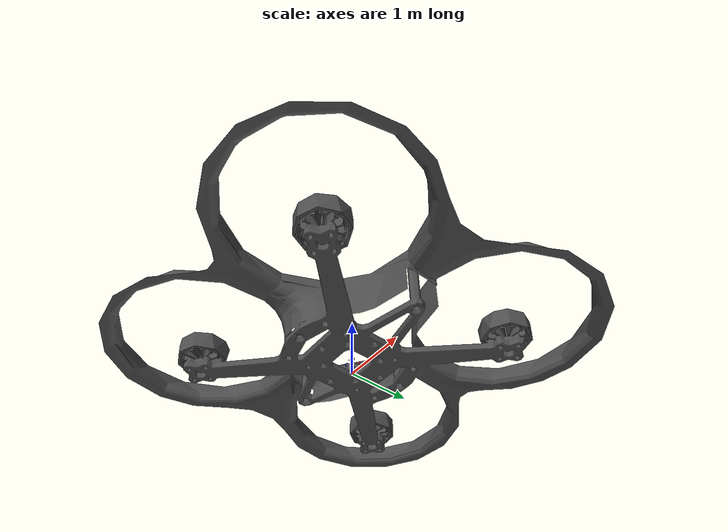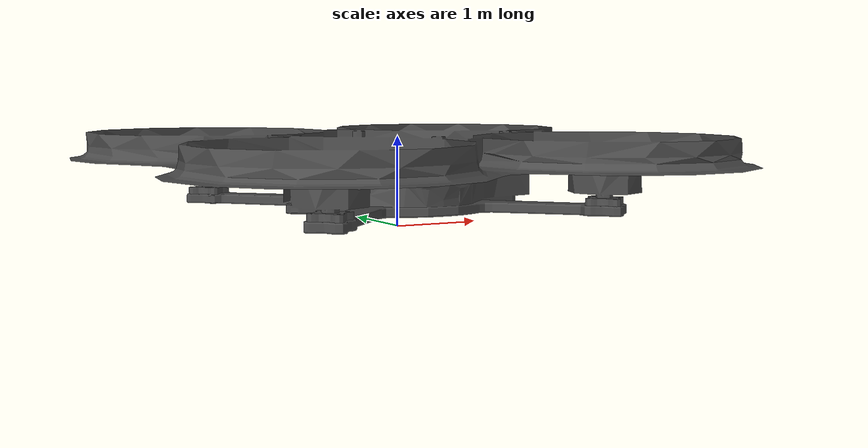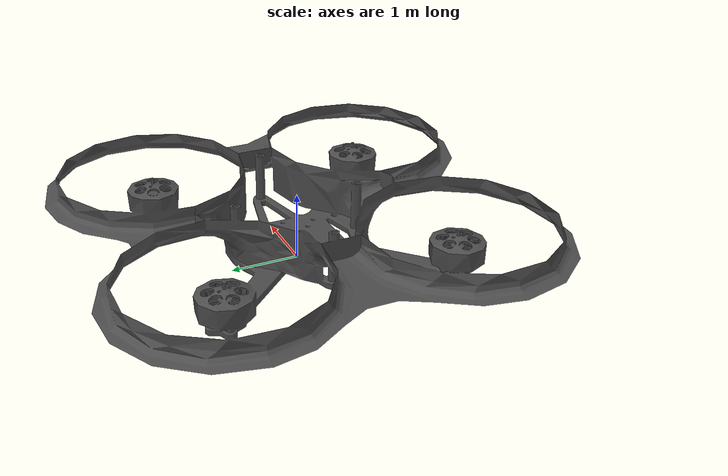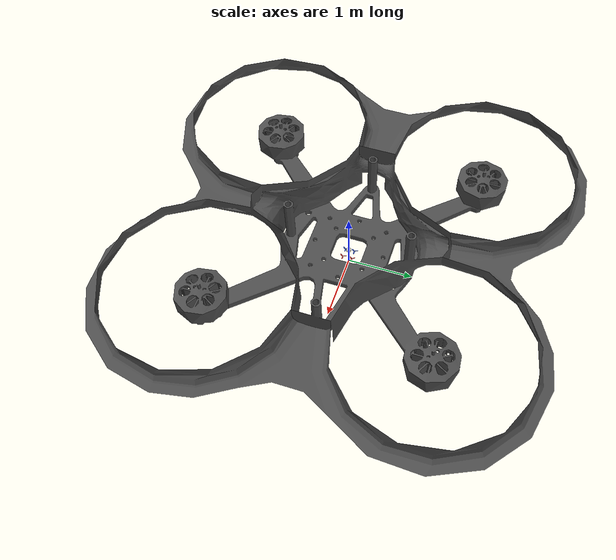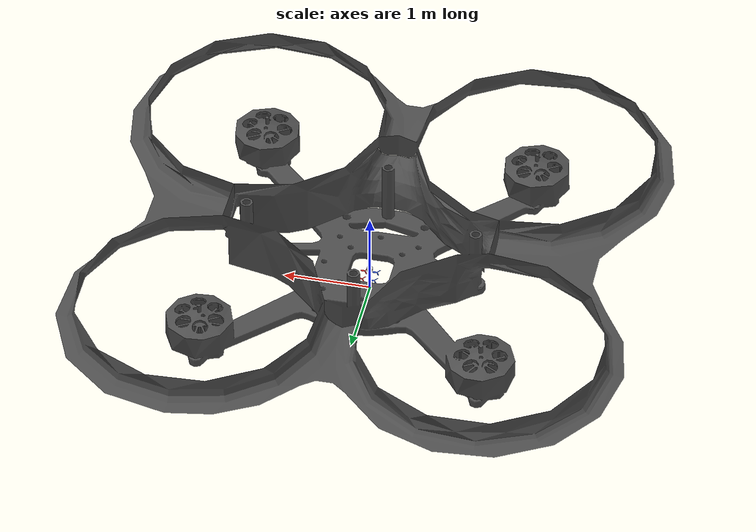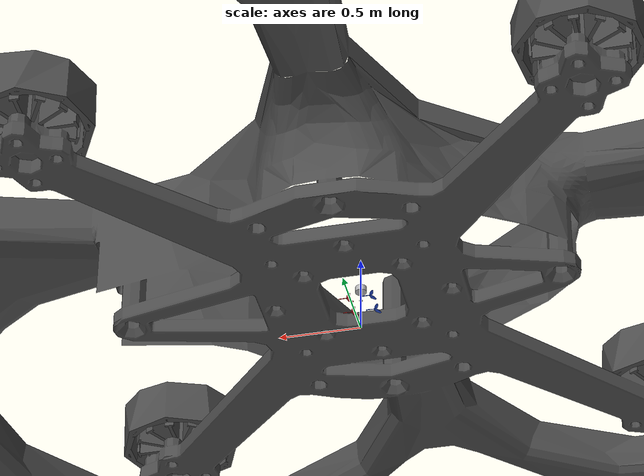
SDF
<?xml version="1.0"?>
<sdf version="1.6">
  <model name="sunray_with_2dlidar">
    <include>
      <uri>model://sunray</uri>
    </include>
    <include>
      <uri>model://2D_lidar</uri>
      <pose>0 0 0.28 0 0 0</pose>
    </include>
    <joint name="2Dlidar_joint" type="fixed">
      <child>2D_lidar::laser</child>
      <parent>sunray::base_link</parent>
      <axis>
        <xyz>0 0 1</xyz>
        <limit>
          <upper>0</upper>
          <lower>0</lower>
        </limit>
      </axis>
    </joint>
  </model>
</sdf>

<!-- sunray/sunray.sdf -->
<sdf version='1.6'>
  <model name='sunray'>
    <!-- sunray body -->
    <link name='base_link'>
      <pose>0 0 0 0 0 0</pose>
      <inertial>
        <pose>0 0 0.18 0 0 0</pose>
        <mass>1.0</mass>
        <inertia>
          <ixx>0.0065</ixx>
          <ixy>0</ixy>
          <ixz>0</ixz>
          <iyy>0.0065</iyy>
          <iyz>0</iyz>
          <izz>0.012</izz>
        </inertia>
      </inertial>
      <collision name='base_link_inertia_collision'>
        <pose>0 0 0.125 0 0 0</pose>
        <geometry>
          <box>
						<size>0.2 0.15 0.06</size>
          </box>
        </geometry>
        <surface>
          <contact>
            <ode>
              <min_depth>0.001</min_depth>
              <max_vel>0</max_vel>
            </ode>
          </contact>
          <friction>
            <ode/>
          </friction>
        </surface>
      </collision>
      <visual name='base_link_inertia_visual'>
        <pose>0 0 0.2 0 0 -1.57</pose>
        <geometry>
          <mesh>
            <scale>0.03 0.03 0.03</scale>
            <uri>model://sunray/meshes/sunray.stl</uri>
          </mesh>
        </geometry>
        <material>
          <script>
            <name>Gazebo/DarkGrey</name>
            <uri>file://media/materials/scripts/gazebo.material</uri>
          </script>
        </material>
      </visual>
      <gravity>1</gravity>
      <velocity_decay/>
      <self_collide>0</self_collide>
    </link>
    <link name='imu_link'>
      <pose>0 0 0 0 0 0</pose>
      <inertial>
        <pose>0 0 0.2 0 0 0</pose>
        <mass>0.015</mass>
        <inertia>
          <ixx>1e-05</ixx>
          <ixy>0</ixy>
          <ixz>0</ixz>
          <iyy>1e-05</iyy>
          <iyz>0</iyz>
          <izz>1e-05</izz>
        </inertia>
      </inertial>
    </link>
    <joint name='imu_joint' type='revolute'>
      <child>imu_link</child>
      <parent>base_link</parent>
      <axis>
        <xyz>1 0 0</xyz>
        <limit>
          <lower>0</lower>
          <upper>0</upper>
          <effort>0</effort>
          <velocity>0</velocity>
        </limit>
        <dynamics>
          <spring_reference>0</spring_reference>
          <spring_stiffness>0</spring_stiffness>
        </dynamics>
        <use_parent_model_frame>1</use_parent_model_frame>
      </axis>
    </joint>
    <link name='rotor_0'>
			<pose>0.070 -0.070 0.175 0 0 0</pose>
      <inertial>
        <pose>0 0 0 0 0 0</pose>
        <mass>0.005</mass>
        <inertia>
          <ixx>9.75e-07</ixx>
          <ixy>0</ixy>
          <ixz>0</ixz>
          <iyy>0.000173104</iyy>
          <iyz>0</iyz>
          <izz>0.000174004</izz>
        </inertia>
      </inertial>
      <collision name='rotor_0_collision'>
        <pose>0 0 0 0 0 0</pose>
        <geometry>
          <cylinder>
            <length>0.005</length>
            <radius>0.05</radius>
          </cylinder>
        </geometry>
        <surface>
          <contact>
            <ode/>
          </contact>
          <friction>
            <ode/>
          </friction>
        </surface>
      </collision>
      <visual name='rotor_0_visual'>
        <pose>0 0 0 0 0 0</pose>
        <geometry>
          <mesh>
            <scale>0.0012 0.0012 0.0012</scale>
            <uri>model://sunray/meshes/sunray_cw.stl</uri>
          </mesh>
        </geometry>
        <material>
          <script>
            <name>Gazebo/Red</name>
            <uri>file://media/materials/scripts/gazebo.material</uri>
          </script>
        </material>
      </visual>
      <gravity>1</gravity>
      <velocity_decay/>
      <self_collide>0</self_collide>
    </link>
    <joint name='rotor_0_joint' type='revolute'>
      <child>rotor_0</child>
      <parent>base_link</parent>
      <axis>
        <xyz>0 0 1</xyz>
        <limit>
          <lower>-1e+16</lower>
          <upper>1e+16</upper>
        </limit>
        <dynamics>
          <spring_reference>0</spring_reference>
          <spring_stiffness>0</spring_stiffness>
        </dynamics>
        <use_parent_model_frame>1</use_parent_model_frame>
      </axis>
    </joint>
    <link name='rotor_1'>
			<pose>-0.070 0.070 0.175 0 0 0</pose>
      <inertial>
        <pose>0 0 0 0 0 0</pose>
        <mass>0.005</mass>
        <inertia>
          <ixx>9.75e-07</ixx>
          <ixy>0</ixy>
          <ixz>0</ixz>
          <iyy>0.000173104</iyy>
          <iyz>0</iyz>
          <izz>0.000174004</izz>
        </inertia>
      </inertial>
      <collision name='rotor_1_collision'>
        <pose>0 0 0 0 0 0</pose>
        <geometry>
          <cylinder>
            <length>0.005</length>
            <radius>0.05</radius>
          </cylinder>
        </geometry>
        <surface>
          <contact>
            <ode/>
          </contact>
          <friction>
            <ode/>
          </friction>
        </surface>
      </collision>
      <visual name='rotor_1_visual'>
        <pose>0 0 0 0 0 0</pose>
        <geometry>
          <mesh>
            <scale>0.0012 0.0012 0.0012</scale>
            <uri>model://sunray/meshes/sunray_cw.stl</uri>
          </mesh>
        </geometry>
        <material>
          <script>
            <name>Gazebo/Blue</name>
            <uri>file://media/materials/scripts/gazebo.material</uri>
          </script>
        </material>
      </visual>
      <gravity>1</gravity>
      <velocity_decay/>
      <self_collide>0</self_collide>
    </link>
    <joint name='rotor_1_joint' type='revolute'>
      <child>rotor_1</child>
      <parent>base_link</parent>
      <axis>
        <xyz>0 0 1</xyz>
        <limit>
          <lower>-1e+16</lower>
          <upper>1e+16</upper>
        </limit>
        <dynamics>
          <spring_reference>0</spring_reference>
          <spring_stiffness>0</spring_stiffness>
        </dynamics>
        <use_parent_model_frame>1</use_parent_model_frame>
      </axis>
    </joint>
    <link name='rotor_2'>
			<pose>0.070 0.070 0.175 0 0 0</pose>
      <inertial>
        <pose>0 0 0 0 0 0</pose>
        <mass>0.005</mass>
        <inertia>
          <ixx>9.75e-07</ixx>
          <ixy>0</ixy>
          <ixz>0</ixz>
          <iyy>0.000173104</iyy>
          <iyz>0</iyz>
          <izz>0.000174004</izz>
        </inertia>
      </inertial>
      <collision name='rotor_2_collision'>
        <pose>0 0 0 0 0 0</pose>
        <geometry>
          <cylinder>
            <length>0.005</length>
            <radius>0.05</radius>
          </cylinder>
        </geometry>
        <surface>
          <contact>
            <ode/>
          </contact>
          <friction>
            <ode/>
          </friction>
        </surface>
      </collision>
      <visual name='rotor_2_visual'>
        <pose>0 0 0 0 0 0</pose>
        <geometry>
          <mesh>
            <scale>0.0012 0.0012 0.0012</scale>
            <uri>model://sunray/meshes/sunray_cw.stl</uri>
          </mesh>
        </geometry>
        <material>
          <script>
            <name>Gazebo/Red</name>
            <uri>file://media/materials/scripts/gazebo.material</uri>
          </script>
        </material>
      </visual>
      <gravity>1</gravity>
      <velocity_decay/>
      <self_collide>0</self_collide>
    </link>
    <joint name='rotor_2_joint' type='revolute'>
      <child>rotor_2</child>
      <parent>base_link</parent>
      <axis>
        <xyz>0 0 1</xyz>
        <limit>
          <lower>-1e+16</lower>
          <upper>1e+16</upper>
        </limit>
        <dynamics>
          <spring_reference>0</spring_reference>
          <spring_stiffness>0</spring_stiffness>
        </dynamics>
        <use_parent_model_frame>1</use_parent_model_frame>
      </axis>
    </joint>
    <link name='rotor_3'>
			<pose>-0.070 -0.070 0.175 0 0 0</pose>
      <inertial>
        <pose>0 0 0 0 0 0</pose>
        <mass>0.005</mass>
        <inertia>
          <ixx>9.75e-07</ixx>
          <ixy>0</ixy>
          <ixz>0</ixz>
          <iyy>0.000173104</iyy>
          <iyz>0</iyz>
          <izz>0.000174004</izz>
        </inertia>
      </inertial>
      <collision name='rotor_3_collision'>
        <pose>0 0 0 0 0 0</pose>
        <geometry>
          <cylinder>
            <length>0.005</length>
            <radius>0.05</radius>
          </cylinder>
        </geometry>
        <surface>
          <contact>
            <ode/>
          </contact>
          <friction>
            <ode/>
          </friction>
        </surface>
      </collision>
      <visual name='rotor_3_visual'>
        <pose>0 0 0 0 0 0</pose>
        <geometry>
          <mesh>
            <scale>0.0012 0.0012 0.0012</scale>
            <uri>model://sunray/meshes/sunray_cw.stl</uri>
          </mesh>
        </geometry>
        <material>
          <script>
            <name>Gazebo/Blue</name>
            <uri>file://media/materials/scripts/gazebo.material</uri>
          </script>
        </material>
      </visual>
      <gravity>1</gravity>
      <velocity_decay/>
      <self_collide>0</self_collide>
    </link>
    <joint name='rotor_3_joint' type='revolute'>
      <child>rotor_3</child>
      <parent>base_link</parent>
      <axis>
        <xyz>0 0 1</xyz>
        <limit>
          <lower>-1e+16</lower>
          <upper>1e+16</upper>
        </limit>
        <dynamics>
          <spring_reference>0</spring_reference>
          <spring_stiffness>0</spring_stiffness>
        </dynamics>
        <use_parent_model_frame>1</use_parent_model_frame>
      </axis>
    </joint>
    <include>
      <uri>model://gps</uri>
      <pose>0.0 0 0.2 0 0 0</pose>
      <name>gps</name>
    </include>
    <joint name='gps_joint' type='fixed'>
      <child>gps::link</child>
      <parent>base_link</parent>
    </joint>
    <plugin name='rosbag' filename='libgazebo_multirotor_base_plugin.so'>
      <robotNamespace></robotNamespace>
      <linkName>base_link</linkName>
      <rotorVelocitySlowdownSim>10</rotorVelocitySlowdownSim>
    </plugin>
    <plugin name='front_right_motor_model' filename='libgazebo_motor_model.so'>
      <robotNamespace></robotNamespace>
      <jointName>rotor_0_joint</jointName>
      <linkName>rotor_0</linkName>
      <turningDirection>ccw</turningDirection>
      <timeConstantUp>0.0125</timeConstantUp>
      <timeConstantDown>0.025</timeConstantDown>
      <maxRotVelocity>1500</maxRotVelocity>
      <motorConstant>8.54858e-06</motorConstant>
      <momentConstant>0.06</momentConstant>
      <commandSubTopic>/gazebo/command/motor_speed</commandSubTopic>
      <motorNumber>0</motorNumber>
      <rotorDragCoefficient>0.000806428</rotorDragCoefficient>
      <rollingMomentCoefficient>1e-06</rollingMomentCoefficient>
      <motorSpeedPubTopic>/motor_speed/0</motorSpeedPubTopic>
      <rotorVelocitySlowdownSim>10</rotorVelocitySlowdownSim>
    </plugin>
    <plugin name='back_left_motor_model' filename='libgazebo_motor_model.so'>
      <robotNamespace></robotNamespace>
      <jointName>rotor_1_joint</jointName>
      <linkName>rotor_1</linkName>
      <turningDirection>ccw</turningDirection>
      <timeConstantUp>0.0125</timeConstantUp>
      <timeConstantDown>0.025</timeConstantDown>
      <maxRotVelocity>1500</maxRotVelocity>
      <motorConstant>8.54858e-06</motorConstant>
      <momentConstant>0.06</momentConstant>
      <commandSubTopic>/gazebo/command/motor_speed</commandSubTopic>
      <motorNumber>1</motorNumber>
      <rotorDragCoefficient>0.000806428</rotorDragCoefficient>
      <rollingMomentCoefficient>1e-06</rollingMomentCoefficient>
      <motorSpeedPubTopic>/motor_speed/1</motorSpeedPubTopic>
      <rotorVelocitySlowdownSim>10</rotorVelocitySlowdownSim>
    </plugin>
    <plugin name='front_left_motor_model' filename='libgazebo_motor_model.so'>
      <robotNamespace></robotNamespace>
      <jointName>rotor_2_joint</jointName>
      <linkName>rotor_2</linkName>
      <turningDirection>cw</turningDirection>
      <timeConstantUp>0.0125</timeConstantUp>
      <timeConstantDown>0.025</timeConstantDown>
      <maxRotVelocity>1500</maxRotVelocity>
      <motorConstant>8.54858e-06</motorConstant>
      <momentConstant>0.06</momentConstant>
      <commandSubTopic>/gazebo/command/motor_speed</commandSubTopic>
      <motorNumber>2</motorNumber>
      <rotorDragCoefficient>0.000806428</rotorDragCoefficient>
      <rollingMomentCoefficient>1e-06</rollingMomentCoefficient>
      <motorSpeedPubTopic>/motor_speed/2</motorSpeedPubTopic>
      <rotorVelocitySlowdownSim>10</rotorVelocitySlowdownSim>
    </plugin>
    <plugin name='back_right_motor_model' filename='libgazebo_motor_model.so'>
      <robotNamespace></robotNamespace>
      <jointName>rotor_3_joint</jointName>
      <linkName>rotor_3</linkName>
      <turningDirection>cw</turningDirection>
      <timeConstantUp>0.0125</timeConstantUp>
      <timeConstantDown>0.025</timeConstantDown>
      <maxRotVelocity>1500</maxRotVelocity>
      <motorConstant>8.54858e-06</motorConstant>
      <momentConstant>0.06</momentConstant>
      <commandSubTopic>/gazebo/command/motor_speed</commandSubTopic>
      <motorNumber>3</motorNumber>
      <rotorDragCoefficient>0.000806428</rotorDragCoefficient>
      <rollingMomentCoefficient>1e-06</rollingMomentCoefficient>
      <motorSpeedPubTopic>/motor_speed/3</motorSpeedPubTopic>
      <rotorVelocitySlowdownSim>10</rotorVelocitySlowdownSim>
    </plugin>
    <plugin name='groundtruth_plugin' filename='libgazebo_groundtruth_plugin.so'>
      <robotNamespace/>
    </plugin>
    <plugin name='magnetometer_plugin' filename='libgazebo_magnetometer_plugin.so'>
      <robotNamespace/>
      <pubRate>100</pubRate>
      <noiseDensity>0.0004</noiseDensity>
      <randomWalk>6.4e-06</randomWalk>
      <biasCorrelationTime>600</biasCorrelationTime>
      <magTopic>/mag</magTopic>
    </plugin>
    <plugin name='barometer_plugin' filename='libgazebo_barometer_plugin.so'>
      <robotNamespace/>
      <pubRate>50</pubRate>
      <baroTopic>/baro</baroTopic>
    </plugin>
    <plugin name='mavlink_interface' filename='libgazebo_mavlink_interface.so'>
      <robotNamespace/>
      <imuSubTopic>/imu</imuSubTopic>
      <gpsSubTopic>/gps</gpsSubTopic>
      <magSubTopic>/mag</magSubTopic>
      <baroSubTopic>/baro</baroSubTopic>
      <mavlink_addr>INADDR_ANY</mavlink_addr>
      <mavlink_tcp_port>4560</mavlink_tcp_port>
      <serialEnabled>false</serialEnabled>
      <serialDevice>/dev/ttyACM0</serialDevice>
      <baudRate>921600</baudRate>
      <qgc_addr>INADDR_ANY</qgc_addr>
      <qgc_udp_port>14550</qgc_udp_port>
      <hil_mode>false</hil_mode>
      <hil_state_level>false</hil_state_level>
      <enable_lockstep>true</enable_lockstep>
      <use_tcp>true</use_tcp>
      <motorSpeedCommandPubTopic>/gazebo/command/motor_speed</motorSpeedCommandPubTopic>
      <control_channels>
        <channel name='rotor1'>
          <input_index>0</input_index>
          <input_offset>0</input_offset>
          <input_scaling>1200</input_scaling>
          <zero_position_disarmed>0</zero_position_disarmed>
          <zero_position_armed>100</zero_position_armed>
          <joint_control_type>velocity</joint_control_type>
        </channel>
        <channel name='rotor2'>
          <input_index>1</input_index>
          <input_offset>0</input_offset>
          <input_scaling>1200</input_scaling>
          <zero_position_disarmed>0</zero_position_disarmed>
          <zero_position_armed>100</zero_position_armed>
          <joint_control_type>velocity</joint_control_type>
        </channel>
        <channel name='rotor3'>
          <input_index>2</input_index>
          <input_offset>0</input_offset>
          <input_scaling>1200</input_scaling>
          <zero_position_disarmed>0</zero_position_disarmed>
          <zero_position_armed>100</zero_position_armed>
          <joint_control_type>velocity</joint_control_type>
        </channel>
        <channel name='rotor4'>
          <input_index>3</input_index>
          <input_offset>0</input_offset>
          <input_scaling>1200</input_scaling>
          <zero_position_disarmed>0</zero_position_disarmed>
          <zero_position_armed>100</zero_position_armed>
          <joint_control_type>velocity</joint_control_type>
        </channel>
      </control_channels>
    </plugin>
    <static>0</static>
    <plugin name='gazebo_imu_plugin' filename='libgazebo_imu_plugin.so'>
      <robotNamespace></robotNamespace>
      <linkName>imu_link</linkName>
      <imuTopic>/imu</imuTopic>
      <gyroscopeNoiseDensity>0.0003394</gyroscopeNoiseDensity>
      <gyroscopeRandomWalk>3.8785e-05</gyroscopeRandomWalk>
      <gyroscopeBiasCorrelationTime>1000.0</gyroscopeBiasCorrelationTime>
      <gyroscopeTurnOnBiasSigma>0.0087</gyroscopeTurnOnBiasSigma>
      <accelerometerNoiseDensity>0.004</accelerometerNoiseDensity>
      <accelerometerRandomWalk>0.006</accelerometerRandomWalk>
      <accelerometerBiasCorrelationTime>300.0</accelerometerBiasCorrelationTime>
      <accelerometerTurnOnBiasSigma>0.196</accelerometerTurnOnBiasSigma>
    </plugin>

    <plugin name="p3d_base_controller" filename="libgazebo_ros_p3d.so">
      <alwaysOn>true</alwaysOn>
      <updateRate>50.0</updateRate>
      <bodyName>base_link</bodyName>
      <topicName>sunray/gazebo_pose</topicName>
      <gaussianNoise>0.00</gaussianNoise>
      <frameName>world</frameName>
      <xyzOffsets>0 0 0</xyzOffsets>
      <rpyOffsets>0 0 0</rpyOffsets>
    </plugin>

  </model>
</sdf>

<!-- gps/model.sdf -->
<sdf version="1.6">
  <model name="gps">
    <link name="link">
      <pose>0 0 0 0 0 0</pose>
      <inertial>
        <pose>0 0 0 0 0 0</pose>
        <mass>0.015</mass>
        <inertia>
          <ixx>1e-05</ixx>
          <ixy>0</ixy>
          <ixz>0</ixz>
          <iyy>1e-05</iyy>
          <iyz>0</iyz>
          <izz>1e-05</izz>
        </inertia>
      </inertial>
      <visual name="visual">
        <geometry>
          <cylinder>
            <radius>0.01</radius>
            <length>0.002</length>
          </cylinder>
        </geometry>
        <material>
          <script>
            <name>Gazebo/Black</name>
            <uri>file://usr/share/gz/gz-sim8/media/gazebo.material</uri>
          </script>
        </material>
      </visual>
      <sensor name="gps" type="gps">
        <pose>0 0 0 0 0 0</pose>
        <update_rate>5.0</update_rate>
        <always_on>true</always_on>
        <visualize>false</visualize>
        <!-- GpsSensor noise currently not used -->
        <plugin name="gps_plugin" filename="libgazebo_gps_plugin.so">
          <robotNamespace></robotNamespace>
          <gpsNoise>true</gpsNoise>
          <gpsXYRandomWalk>2.0</gpsXYRandomWalk>
          <gpsZRandomWalk>4.0</gpsZRandomWalk>
          <gpsXYNoiseDensity>2.0e-4</gpsXYNoiseDensity>
          <gpsZNoiseDensity>4.0e-4</gpsZNoiseDensity>
          <gpsVXYNoiseDensity>0.2</gpsVXYNoiseDensity>
          <gpsVZNoiseDensity>0.4</gpsVZNoiseDensity>
        </plugin>
      </sensor>
    </link>
  </model>
</sdf>

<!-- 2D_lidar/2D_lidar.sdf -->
<sdf version="1.5">
    <model name="2D_lidar">
      <link name="laser">
        <visual name="lidar_visual">
          <geometry>
            <cylinder>
              <radius>0.035</radius>
              <length>0.035</length>
            </cylinder>
          </geometry>
        </visual>
        <inertial>
        <mass>0.001</mass> <!--质量-->
         <!--惯性标签，定义模型当前link的惯性矩，是一个对称正定3x3矩阵-->
        <inertia>
          <ixx>0.407e-6</ixx>
          <ixy>0</ixy>
          <ixz>0</ixz>
          <iyy>0.407e-6</iyy>
          <iyz>0</iyz>
          <izz>0.407e-6</izz>
        </inertia>
       </inertial>
        <!-- Add a ray sensor, and give it a name -->
        <sensor type="ray" name="head_hokuyo_sensor">
        <pose>0 0 0 0 0 0</pose>
        <visualize>true</visualize>
        <update_rate>10</update_rate>
        <ray>
          <scan>
            <horizontal>
              <samples>1000</samples>
              <resolution>1</resolution>
              <min_angle>-3.14</min_angle>
              <max_angle>3.14</max_angle>
            </horizontal>
          </scan>
          <range>
            <min>0.10</min>
            <max>10.0</max>
            <resolution>0.01</resolution>
          </range>
          <noise>
            <type>gaussian</type>
            <mean>0.0</mean>
            <stddev>0.01</stddev>
          </noise>
        </ray>
        <plugin name="gazebo_ros_head_hokuyo_controller" filename="libgazebo_ros_laser.so">
          <topicName>/scan</topicName>
          <frameName>/base_link</frameName>
        </plugin>
    </sensor>
    </link>
  </model>
</sdf>
